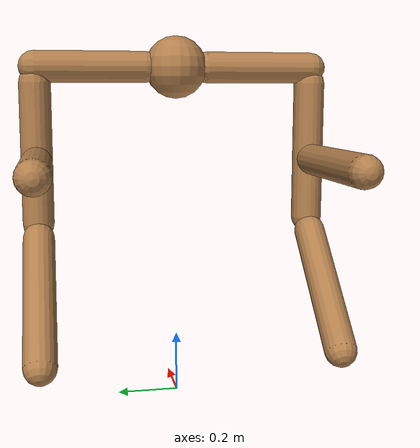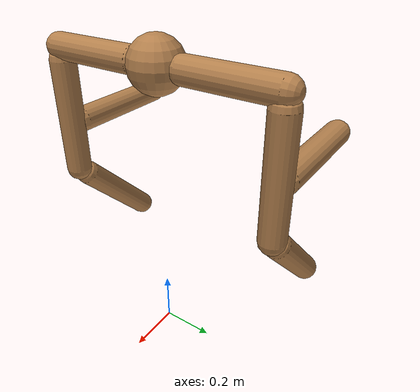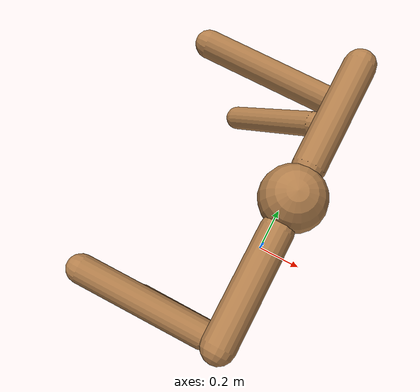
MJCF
<?xml version='1.0' encoding='UTF-8'?>
<!-- Universal Animal Template: unimal -->
<mujoco model="unimal">
  <compiler angle="degree"/>
  <size njmax="2000" nconmax="500"/>
  <option timestep=".005">
    <flag filterparent="disable"/>
  </option>
  <!-- Common defaults to make search space tractable -->
  <default>
    <!-- Define motor defaults -->
    <motor ctrlrange="-1 1" ctrllimited="true"/>
    <!-- Define joint defaults -->
    <default class="normal_joint">
      <joint type="hinge" damping="1" stiffness="1" armature="1" limited="true" range="-120 120" solimplimit="0 0.99 0.01"/>
    </default>
    <default class="walker_joint">
      <joint type="hinge" damping="0.2" stiffness="1" armature=".01" limited="true" range="-120 120" solimplimit="0 0.99 0.01"/>
    </default>
    <default class="stiff_joint">
      <joint type="hinge" damping="5" stiffness="10" armature=".01" limited="true" solimplimit="0 0.99 0.01"/>
    </default>
    <default class="free">
      <joint limited="false" damping="0" armature="0" stiffness="0"/>
    </default>
    <default class="growth_site">
      <site size="1e-6 1e-6 1e-6"/>
    </default>
    <default class="torso_growth_site">
      <site size="1e-6 1e-6 1e-6"/>
    </default>
    <default class="mirror_growth_site">
      <site size="1e-6 1e-6 1e-6"/>
    </default>
    <default class="btm_pos_site">
      <site size="1e-6 1e-6 1e-6"/>
    </default>
    <default class="box_face_site">
      <site size="1e-6 1e-6 1e-6"/>
    </default>
    <default class="imu_vel">
      <site type="box" size="0.05" rgba="1 0 0 0"/>
    </default>
    <default class="touch_site">
      <site group="3" rgba="0 0 1 .3"/>
    </default>
    <default class="food_site">
      <site material="food" size="0.15"/>
    </default>
    <!-- Define geom defaults -->
    <geom type="capsule" condim="3" friction="0.7 0.1 0.1" material="self"/>
  </default>
  <worldbody>
    <light diffuse="1 1 1" directional="true" exponent="1" pos="0 0 8" specular="0.1 0.1 0.1" dir="0 0 -1"/>
    <!-- Programatically generated xml goes here -->
    <body name="torso/0" pos="0 0 1.09">
      <joint name="root" type="free" class="free"/>
      <site name="root" class="imu_vel"/>
      <geom name="torso/0" type="sphere" size="0.1" condim="3" density="800"/>
      <camera name="side" pos="0 -7 2" xyaxes="1 0 0 0 1 2" mode="trackcom"/>
      <site name="torso/0" class="growth_site" pos="0 0 0"/>
      <site name="torso/btm_pos/0" class="btm_pos_site" pos="0 0 -0.1"/>
      <site name="torso/touch/0" class="touch_site" size="0.11"/>
      <site name="torso/vertical/0" class="torso_growth_site" pos="0 0 -0.1"/>
      <body name="limb/0" pos="0.0 0.1 0.0">
        <joint name="limbx/0" type="hinge" class="normal_joint" range="-60 30" pos="0.0 -0.05 0.0" axis="1.0 0.0 0.0"/>
        <geom name="limb/0" type="capsule" fromto="0.0 0.0 0.0 0.0 0.35 0.0" size="0.05" density="700"/>
        <site name="limb/mid/0" class="mirror_growth_site" pos="0.0 0.2 0.0"/>
        <site name="limb/btm/0" class="mirror_growth_site" pos="0.0 0.35 0.0"/>
        <site name="limb/btm_pos/0" class="btm_pos_site" pos="0.0 0.35 0.0"/>
        <site name="limb/touch/0" class="touch_site" size="0.060000000000000005" fromto="0.0 0.0 0.0 0.0 0.35 0.0" type="capsule"/>
        <body name="limb/31" pos="0.0 0.35 -0.05">
          <joint name="limbx/31" type="hinge" class="normal_joint" range="-30 30" pos="0.0 0.0 0.05" axis="1.0 0.0 0.0"/>
          <joint name="limby/31" type="hinge" class="normal_joint" range="-30 0" pos="0.0 0.0 0.05" axis="0.0 1.0 0.0"/>
          <geom name="limb/31" type="capsule" fromto="0.0 0.0 0.0 0.0 0.0 -0.45" size="0.05" density="700"/>
          <site name="limb/mid/31" class="mirror_growth_site" pos="0.0 0.0 -0.25"/>
          <site name="limb/btm/31" class="mirror_growth_site" pos="0.0 0.0 -0.45"/>
          <site name="limb/btm_pos/31" class="btm_pos_site" pos="0.0 0.0 -0.45"/>
          <site name="limb/touch/31" class="touch_site" size="0.060000000000000005" fromto="0.0 0.0 0.0 0.0 0.0 -0.45" type="capsule"/>
          <body name="limb/40" pos="-0.04 0.0 -0.49">
            <joint name="limby/40" type="hinge" class="normal_joint" range="-30 30" pos="0.04 0.0 0.04" axis="0.0 1.0 0.0"/>
            <geom name="limb/40" type="capsule" fromto="0.0 0.0 0.0 -0.32 0.0 -0.32" size="0.05" density="700"/>
            <site name="limb/mid/40" class="mirror_growth_site" pos="-0.18 0.0 -0.18"/>
            <site name="limb/btm/40" class="mirror_growth_site" pos="-0.32 0.0 -0.32"/>
            <site name="limb/btm_pos/40" class="btm_pos_site" pos="-0.35 0.0 -0.35"/>
            <site name="limb/touch/40" class="touch_site" size="0.060000000000000005" fromto="0.0 0.0 0.0 -0.32 0.0 -0.32" type="capsule"/>
          </body>
          <body name="limb/42" pos="-0.05 0.0 -0.25">
            <joint name="limby/42" type="hinge" class="normal_joint" range="-45 0" pos="0.05 0.0 0.0" axis="0.0 1.0 0.0"/>
            <geom name="limb/42" type="capsule" fromto="0.0 0.0 0.0 -0.45 0.0 0.0" size="0.05" density="700"/>
            <site name="limb/mid/42" class="mirror_growth_site" pos="-0.25 0.0 0.0"/>
            <site name="limb/btm/42" class="mirror_growth_site" pos="-0.45 0.0 0.0"/>
            <site name="limb/btm_pos/42" class="btm_pos_site" pos="-0.5 0.0 0.0"/>
            <site name="limb/touch/42" class="touch_site" size="0.060000000000000005" fromto="0.0 0.0 0.0 -0.45 0.0 0.0" type="capsule"/>
          </body>
        </body>
      </body>
      <body name="limb/1" pos="0.0 -0.1 0.0">
        <joint name="limbx/1" type="hinge" class="normal_joint" range="-60 30" pos="0.0 0.05 0.0" axis="1.0 0.0 -0.0"/>
        <geom name="limb/1" type="capsule" fromto="0.0 0.0 0.0 0.0 -0.35 0.0" size="0.05" density="700"/>
        <site name="limb/mid/1" class="mirror_growth_site" pos="0.0 -0.2 0.0"/>
        <site name="limb/btm/1" class="mirror_growth_site" pos="0.0 -0.35 0.0"/>
        <site name="limb/btm_pos/1" class="btm_pos_site" pos="0.0 -0.35 0.0"/>
        <site name="limb/touch/1" class="touch_site" size="0.060000000000000005" fromto="0.0 0.0 0.0 0.0 -0.35 0.0" type="capsule"/>
        <body name="limb/32" pos="0.0 -0.35 -0.05">
          <joint name="limbx/32" type="hinge" class="normal_joint" range="-30 30" pos="0.0 0.0 0.05" axis="1.0 0.0 0.0"/>
          <joint name="limby/32" type="hinge" class="normal_joint" range="-30 0" pos="0.0 0.0 0.05" axis="0.0 1.0 0.0"/>
          <geom name="limb/32" type="capsule" fromto="0.0 0.0 0.0 0.0 0.0 -0.45" size="0.05" density="700"/>
          <site name="limb/mid/32" class="mirror_growth_site" pos="0.0 0.0 -0.25"/>
          <site name="limb/btm/32" class="mirror_growth_site" pos="0.0 0.0 -0.45"/>
          <site name="limb/btm_pos/32" class="btm_pos_site" pos="0.0 0.0 -0.45"/>
          <site name="limb/touch/32" class="touch_site" size="0.060000000000000005" fromto="0.0 0.0 0.0 0.0 0.0 -0.45" type="capsule"/>
          <body name="limb/41" pos="-0.04 0.0 -0.49">
            <joint name="limby/41" type="hinge" class="normal_joint" range="-30 30" pos="0.04 0.0 0.04" axis="0.0 1.0 0.0"/>
            <geom name="limb/41" type="capsule" fromto="0.0 0.0 0.0 -0.32 0.0 -0.32" size="0.05" density="700"/>
            <site name="limb/mid/41" class="mirror_growth_site" pos="-0.18 0.0 -0.18"/>
            <site name="limb/btm/41" class="mirror_growth_site" pos="-0.32 0.0 -0.32"/>
            <site name="limb/btm_pos/41" class="btm_pos_site" pos="-0.35 0.0 -0.35"/>
            <site name="limb/touch/41" class="touch_site" size="0.060000000000000005" fromto="0.0 0.0 0.0 -0.32 0.0 -0.32" type="capsule"/>
          </body>
          <body name="limb/43" pos="-0.05 0.0 -0.25">
            <joint name="limby/43" type="hinge" class="normal_joint" range="-45 0" pos="0.05 0.0 0.0" axis="0.0 1.0 0.0"/>
            <geom name="limb/43" type="capsule" fromto="0.0 0.0 0.0 -0.45 0.0 0.0" size="0.05" density="700"/>
            <site name="limb/mid/43" class="mirror_growth_site" pos="-0.25 0.0 0.0"/>
            <site name="limb/btm/43" class="mirror_growth_site" pos="-0.45 0.0 0.0"/>
            <site name="limb/btm_pos/43" class="btm_pos_site" pos="-0.5 0.0 0.0"/>
            <site name="limb/touch/43" class="touch_site" size="0.060000000000000005" fromto="0.0 0.0 0.0 -0.45 0.0 0.0" type="capsule"/>
          </body>
        </body>
      </body>
    </body>
  </worldbody>
  <actuator>
    <motor joint="limbx/0" gear="200" name="limbx/0"/>
    <motor joint="limbx/31" gear="200" name="limbx/31"/>
    <motor joint="limby/31" gear="150" name="limby/31"/>
    <motor joint="limby/40" gear="300" name="limby/40"/>
    <motor joint="limby/42" gear="300" name="limby/42"/>
    <motor joint="limbx/1" gear="200" name="limbx/1"/>
    <motor joint="limbx/32" gear="200" name="limbx/32"/>
    <motor joint="limby/32" gear="150" name="limby/32"/>
    <motor joint="limby/41" gear="300" name="limby/41"/>
    <motor joint="limby/43" gear="300" name="limby/43"/>
  </actuator>
  <sensor>
    <accelerometer name="torso_accel" site="root"/>
    <gyro name="torso_gyro" site="root"/>
    <velocimeter name="torso_vel" site="root"/>
    <subtreeangmom name="unimal_am" body="torso/0"/>
    <touch name="torso/0" site="torso/touch/0"/>
    <touch name="limb/0" site="limb/touch/0"/>
    <touch name="limb/31" site="limb/touch/31"/>
    <touch name="limb/40" site="limb/touch/40"/>
    <touch name="limb/42" site="limb/touch/42"/>
    <touch name="limb/1" site="limb/touch/1"/>
    <touch name="limb/32" site="limb/touch/32"/>
    <touch name="limb/41" site="limb/touch/41"/>
    <touch name="limb/43" site="limb/touch/43"/>
  </sensor>
  <!-- Add hfield assets -->
  <asset/>
  <!-- List of contacts to exclude -->
  <contact/>
  <!-- Define material, texture etc -->
  <asset>
    <material name="grid" texture="grid" texrepeat="1 1" texuniform="true" reflectance="0.1"/>
    <material name="hfield" texture="hfield" texrepeat="1 1" texuniform="true" reflectance="0.1"/>
    <material name="wall" texture="wall" texrepeat="1 1" texuniform="true" reflectance=".5"/>
    <material name="platform" texture="platform" texrepeat="1 1" texuniform="true" reflectance=".5"/>
    <material name="boundary" texture="boundary" texrepeat="1 1" texuniform="true" reflectance=".5"/>
    <material name="jump" texture="jump" texrepeat="1 1" texuniform="true" reflectance=".5"/>
    <material name="goal" rgba="1 0 0 1"/>
    <material name="food" rgba="0 0 1 1" emission="1"/>
    <material name="init_position" rgba="0 1 0 0.7"/>
    <material name="self" rgba=".7 .5 .3 1"/>
    <material name="self_invisible" rgba=".7 .5 .3 0"/>
    <material name="self_default" rgba=".7 .5 .3 1"/>
    <material name="self_highlight" rgba="0 .5 .3 1"/>
    <material name="effector" rgba=".7 .4 .2 1"/>
    <material name="effector_default" rgba=".7 .4 .2 1"/>
    <material name="effector_highlight" rgba="0 .5 .3 1"/>
    <material name="decoration" rgba=".3 .5 .7 1"/>
    <material name="eye" rgba="0 .2 1 1"/>
    <material name="target" rgba=".6 .3 .3 1"/>
    <material name="target_default" rgba=".6 .3 .3 1"/>
    <material name="target_highlight" rgba=".6 .3 .3 .4"/>
    <material name="site" rgba=".5 .5 .5 .3"/>
    <material name="ball" texture="ball"/>
  </asset>
  <asset>
    <texture name="grid" type="2d" builtin="checker" rgb1="0.4 0.4 0.4" rgb2="0.4 0.4 0.4" width="300" height="300" mark="edge" markrgb="0.2 0.2 0.2"/>
    <texture name="hfield" type="2d" builtin="checker" rgb1="0.4 0.4 0.4" rgb2="0.4 0.4 0.4" width="300" height="300" mark="edge" markrgb="0.2 0.2 0.2"/>
    <texture name="wall" type="2d" builtin="flat" rgb1="0.9 0.7 0" rgb2="0.9 0.7 0" width="300" height="300"/>
    <texture name="platform" type="2d" builtin="flat" rgb1="0.3 0 0.8" rgb2="0.3 0 0.8" width="300" height="300"/>
    <texture name="boundary" type="2d" builtin="flat" rgb1="0.3 0.3 0.3" rgb2="0.3 0.3 0.3" width="300" height="300"/>
    <texture name="jump" type="2d" builtin="flat" rgb1="0.3 0.3 0.3" rgb2="0.3 0.3 0.3" width="300" height="300"/>
    <texture name="skybox" type="skybox" builtin="gradient" rgb1="1 1 1" rgb2="0.6 0.6 0.6" width="800" height="800"/>
    <texture name="ball" builtin="checker" mark="cross" width="151" height="151" rgb1="0.1 0.1 0.1" rgb2="0.9 0.9 0.9" markrgb="1 1 1"/>
  </asset>
  <visual>
    <headlight ambient="0.6 0.6 0.6" diffuse="0.3 0.3 0.3" specular="0 0 0"/>
    <map znear=".01" shadowclip="0.5"/>
    <quality shadowsize="16384"/>
  </visual>
</mujoco>
